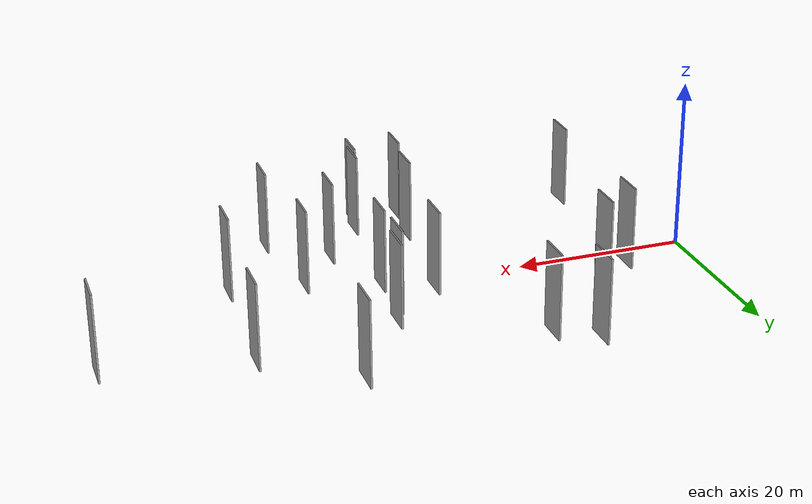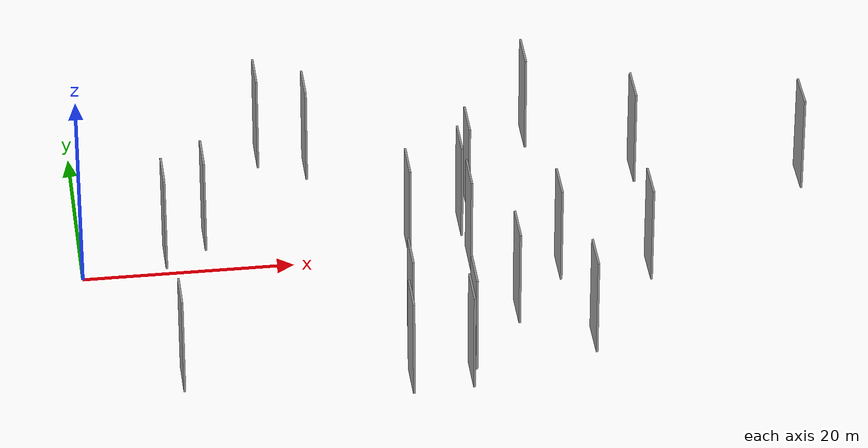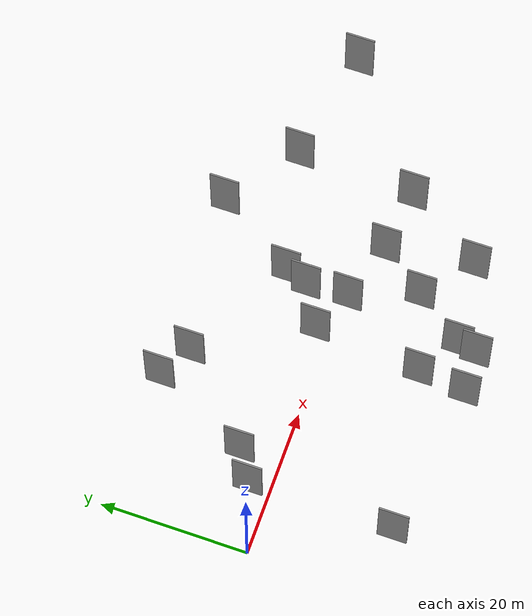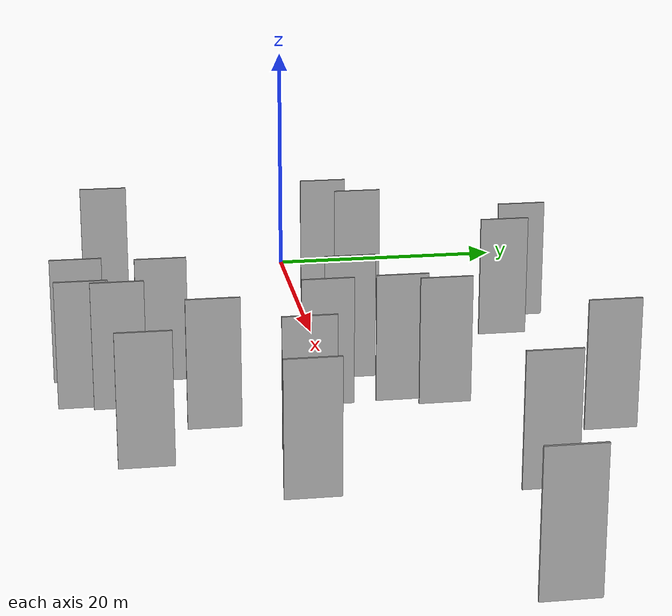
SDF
<sdf version="1.6">
 <world name="default">
  <scene>
   <sky><clouds><speed>12</speed></clouds></sky>
   <ambient>0.4 0.4 0.4 1</ambient>
   <background>0.7 0.7 0.7 1</background>
   <shadows>1</shadows>
  </scene>
  <gravity>0 0 -9.8066</gravity>
  <magnetic_field>6e-06 2.3e-05 -4.2e-05</magnetic_field>
  <physics default="0" name="default_physics" type="ode">
   <ode>
    <solver>
     <type>quick</type>
     <iters>10</iters>
     <sor>1.0</sor>
     <use_dynamic_moi_rescaling>0</use_dynamic_moi_rescaling>
    </solver>
    <constraints>
     <cfm>0</cfm>
     <erp>0.2</erp>
     <contact_max_correcting_vel>100</contact_max_correcting_vel>
     <contact_surface_layer>0.001</contact_surface_layer>
    </constraints>
   </ode>
   <max_step_size>0.004</max_step_size>
   <real_time_factor>1</real_time_factor>
   <real_time_update_rate>250</real_time_update_rate>
  </physics>
  <light name="sun" type="directional">
   <pose>0 0 10 0 0 0</pose>
   <diffuse>0.8 0.8 0.8 1</diffuse>
   <specular>0.2 0.2 0.2 1</specular>
   <attenuation>
    <range>1000</range>
    <constant>0.9</constant>
    <linear>0.01</linear>
    <quadratic>0.001</quadratic>
   </attenuation>
   <direction>-0.5 0.1 -0.9</direction>
  </light>
  <model name="grey_wall_1">
   <static>1</static>
   <pose>46.4453 -15.2437 0.0 0.000000 0.000000 1.570796</pose>
   <link name="link">
    <pose>0 0 5.00 0 0 0</pose>
    <collision name="collision"><geometry><box><size>4.00 0.2 10.00</size></box></geometry></collision>
    <visual name="visual">
     <cast_shadows>0</cast_shadows>
     <geometry><box><size>4.00 0.2 10.00</size></box></geometry>
     <material>
      <script>
       <uri>model://grey_wall/materials/scripts</uri>
       <uri>model://grey_wall/materials/textures</uri>
       <name>vrc/grey_wall</name>
      </script>
     </material>
    </visual>
   </link>
  </model>
  <model name="grey_wall_2">
   <static>1</static>
   <pose>36.3935 4.7524 0.0 0.000000 0.000000 1.570796</pose>
   <link name="link">
    <pose>0 0 5.00 0 0 0</pose>
    <collision name="collision"><geometry><box><size>4.00 0.2 10.00</size></box></geometry></collision>
    <visual name="visual">
     <cast_shadows>0</cast_shadows>
     <geometry><box><size>4.00 0.2 10.00</size></box></geometry>
     <material>
      <script>
       <uri>model://grey_wall/materials/scripts</uri>
       <uri>model://grey_wall/materials/textures</uri>
       <name>vrc/grey_wall</name>
      </script>
     </material>
    </visual>
   </link>
  </model>
  <model name="grey_wall_3">
   <static>1</static>
   <pose>18.2074 18.4902 0.0 0.000000 0.000000 1.570796</pose>
   <link name="link">
    <pose>0 0 5.00 0 0 0</pose>
    <collision name="collision"><geometry><box><size>4.00 0.2 10.00</size></box></geometry></collision>
    <visual name="visual">
     <cast_shadows>0</cast_shadows>
     <geometry><box><size>4.00 0.2 10.00</size></box></geometry>
     <material>
      <script>
       <uri>model://grey_wall/materials/scripts</uri>
       <uri>model://grey_wall/materials/textures</uri>
       <name>vrc/grey_wall</name>
      </script>
     </material>
    </visual>
   </link>
  </model>
  <model name="grey_wall_4">
   <static>1</static>
   <pose>53.2501 -4.4651 0.0 0.000000 0.000000 1.570796</pose>
   <link name="link">
    <pose>0 0 5.00 0 0 0</pose>
    <collision name="collision"><geometry><box><size>4.00 0.2 10.00</size></box></geometry></collision>
    <visual name="visual">
     <cast_shadows>0</cast_shadows>
     <geometry><box><size>4.00 0.2 10.00</size></box></geometry>
     <material>
      <script>
       <uri>model://grey_wall/materials/scripts</uri>
       <uri>model://grey_wall/materials/textures</uri>
       <name>vrc/grey_wall</name>
      </script>
     </material>
    </visual>
   </link>
  </model>
  <model name="grey_wall_5">
   <static>1</static>
   <pose>22.6965 15.9292 0.0 0.000000 0.000000 1.570796</pose>
   <link name="link">
    <pose>0 0 5.00 0 0 0</pose>
    <collision name="collision"><geometry><box><size>4.00 0.2 10.00</size></box></geometry></collision>
    <visual name="visual">
     <cast_shadows>0</cast_shadows>
     <geometry><box><size>4.00 0.2 10.00</size></box></geometry>
     <material>
      <script>
       <uri>model://grey_wall/materials/scripts</uri>
       <uri>model://grey_wall/materials/textures</uri>
       <name>vrc/grey_wall</name>
      </script>
     </material>
    </visual>
   </link>
  </model>
  <model name="grey_wall_6">
   <static>1</static>
   <pose>28.8618 -19.5170 0.0 0.000000 0.000000 1.570796</pose>
   <link name="link">
    <pose>0 0 5.00 0 0 0</pose>
    <collision name="collision"><geometry><box><size>4.00 0.2 10.00</size></box></geometry></collision>
    <visual name="visual">
     <cast_shadows>0</cast_shadows>
     <geometry><box><size>4.00 0.2 10.00</size></box></geometry>
     <material>
      <script>
       <uri>model://grey_wall/materials/scripts</uri>
       <uri>model://grey_wall/materials/textures</uri>
       <name>vrc/grey_wall</name>
      </script>
     </material>
    </visual>
   </link>
  </model>
  <model name="grey_wall_7">
   <static>1</static>
   <pose>11.9529 5.2985 0.0 0.000000 0.000000 1.570796</pose>
   <link name="link">
    <pose>0 0 5.00 0 0 0</pose>
    <collision name="collision"><geometry><box><size>4.00 0.2 10.00</size></box></geometry></collision>
    <visual name="visual">
     <cast_shadows>0</cast_shadows>
     <geometry><box><size>4.00 0.2 10.00</size></box></geometry>
     <material>
      <script>
       <uri>model://grey_wall/materials/scripts</uri>
       <uri>model://grey_wall/materials/textures</uri>
       <name>vrc/grey_wall</name>
      </script>
     </material>
    </visual>
   </link>
  </model>
  <model name="grey_wall_8">
   <static>1</static>
   <pose>39.9564 -9.8889 0.0 0.000000 0.000000 1.570796</pose>
   <link name="link">
    <pose>0 0 5.00 0 0 0</pose>
    <collision name="collision"><geometry><box><size>4.00 0.2 10.00</size></box></geometry></collision>
    <visual name="visual">
     <cast_shadows>0</cast_shadows>
     <geometry><box><size>4.00 0.2 10.00</size></box></geometry>
     <material>
      <script>
       <uri>model://grey_wall/materials/scripts</uri>
       <uri>model://grey_wall/materials/textures</uri>
       <name>vrc/grey_wall</name>
      </script>
     </material>
    </visual>
   </link>
  </model>
  <model name="grey_wall_9">
   <static>1</static>
   <pose>29.5938 -13.0239 0.0 0.000000 0.000000 1.570796</pose>
   <link name="link">
    <pose>0 0 5.00 0 0 0</pose>
    <collision name="collision"><geometry><box><size>4.00 0.2 10.00</size></box></geometry></collision>
    <visual name="visual">
     <cast_shadows>0</cast_shadows>
     <geometry><box><size>4.00 0.2 10.00</size></box></geometry>
     <material>
      <script>
       <uri>model://grey_wall/materials/scripts</uri>
       <uri>model://grey_wall/materials/textures</uri>
       <name>vrc/grey_wall</name>
      </script>
     </material>
    </visual>
   </link>
  </model>
  <model name="grey_wall_10">
   <static>1</static>
   <pose>54.0908 11.7216 0.0 0.000000 0.000000 1.570796</pose>
   <link name="link">
    <pose>0 0 5.00 0 0 0</pose>
    <collision name="collision"><geometry><box><size>4.00 0.2 10.00</size></box></geometry></collision>
    <visual name="visual">
     <cast_shadows>0</cast_shadows>
     <geometry><box><size>4.00 0.2 10.00</size></box></geometry>
     <material>
      <script>
       <uri>model://grey_wall/materials/scripts</uri>
       <uri>model://grey_wall/materials/textures</uri>
       <name>vrc/grey_wall</name>
      </script>
     </material>
    </visual>
   </link>
  </model>
  <model name="grey_wall_11">
   <static>1</static>
   <pose>35.0504 -16.5751 0.0 0.000000 0.000000 1.570796</pose>
   <link name="link">
    <pose>0 0 5.00 0 0 0</pose>
    <collision name="collision"><geometry><box><size>4.00 0.2 10.00</size></box></geometry></collision>
    <visual name="visual">
     <cast_shadows>0</cast_shadows>
     <geometry><box><size>4.00 0.2 10.00</size></box></geometry>
     <material>
      <script>
       <uri>model://grey_wall/materials/scripts</uri>
       <uri>model://grey_wall/materials/textures</uri>
       <name>vrc/grey_wall</name>
      </script>
     </material>
    </visual>
   </link>
  </model>
  <model name="grey_wall_12">
   <static>1</static>
   <pose>44.4175 18.8618 0.0 0.000000 0.000000 1.570796</pose>
   <link name="link">
    <pose>0 0 5.00 0 0 0</pose>
    <collision name="collision"><geometry><box><size>4.00 0.2 10.00</size></box></geometry></collision>
    <visual name="visual">
     <cast_shadows>0</cast_shadows>
     <geometry><box><size>4.00 0.2 10.00</size></box></geometry>
     <material>
      <script>
       <uri>model://grey_wall/materials/scripts</uri>
       <uri>model://grey_wall/materials/textures</uri>
       <name>vrc/grey_wall</name>
      </script>
     </material>
    </visual>
   </link>
  </model>
  <model name="grey_wall_13">
   <static>1</static>
   <pose>36.5735 -0.9675 0.0 0.000000 0.000000 1.570796</pose>
   <link name="link">
    <pose>0 0 5.00 0 0 0</pose>
    <collision name="collision"><geometry><box><size>4.00 0.2 10.00</size></box></geometry></collision>
    <visual name="visual">
     <cast_shadows>0</cast_shadows>
     <geometry><box><size>4.00 0.2 10.00</size></box></geometry>
     <material>
      <script>
       <uri>model://grey_wall/materials/scripts</uri>
       <uri>model://grey_wall/materials/textures</uri>
       <name>vrc/grey_wall</name>
      </script>
     </material>
    </visual>
   </link>
  </model>
  <model name="grey_wall_14">
   <static>1</static>
   <pose>69.9493 8.6833 0.0 0.000000 0.000000 1.570796</pose>
   <link name="link">
    <pose>0 0 5.00 0 0 0</pose>
    <collision name="collision"><geometry><box><size>4.00 0.2 10.00</size></box></geometry></collision>
    <visual name="visual">
     <cast_shadows>0</cast_shadows>
     <geometry><box><size>4.00 0.2 10.00</size></box></geometry>
     <material>
      <script>
       <uri>model://grey_wall/materials/scripts</uri>
       <uri>model://grey_wall/materials/textures</uri>
       <name>vrc/grey_wall</name>
      </script>
     </material>
    </visual>
   </link>
  </model>
  <model name="grey_wall_15">
   <static>1</static>
   <pose>34.4756 -19.2396 0.0 0.000000 0.000000 1.570796</pose>
   <link name="link">
    <pose>0 0 5.00 0 0 0</pose>
    <collision name="collision"><geometry><box><size>4.00 0.2 10.00</size></box></geometry></collision>
    <visual name="visual">
     <cast_shadows>0</cast_shadows>
     <geometry><box><size>4.00 0.2 10.00</size></box></geometry>
     <material>
      <script>
       <uri>model://grey_wall/materials/scripts</uri>
       <uri>model://grey_wall/materials/textures</uri>
       <name>vrc/grey_wall</name>
      </script>
     </material>
    </visual>
   </link>
  </model>
  <model name="grey_wall_16">
   <static>1</static>
   <pose>37.5236 7.8915 0.0 0.000000 0.000000 1.570796</pose>
   <link name="link">
    <pose>0 0 5.00 0 0 0</pose>
    <collision name="collision"><geometry><box><size>4.00 0.2 10.00</size></box></geometry></collision>
    <visual name="visual">
     <cast_shadows>0</cast_shadows>
     <geometry><box><size>4.00 0.2 10.00</size></box></geometry>
     <material>
      <script>
       <uri>model://grey_wall/materials/scripts</uri>
       <uri>model://grey_wall/materials/textures</uri>
       <name>vrc/grey_wall</name>
      </script>
     </material>
    </visual>
   </link>
  </model>
  <model name="grey_wall_17">
   <static>1</static>
   <pose>8.0072 -16.7221 0.0 0.000000 0.000000 1.570796</pose>
   <link name="link">
    <pose>0 0 5.00 0 0 0</pose>
    <collision name="collision"><geometry><box><size>4.00 0.2 10.00</size></box></geometry></collision>
    <visual name="visual">
     <cast_shadows>0</cast_shadows>
     <geometry><box><size>4.00 0.2 10.00</size></box></geometry>
     <material>
      <script>
       <uri>model://grey_wall/materials/scripts</uri>
       <uri>model://grey_wall/materials/textures</uri>
       <name>vrc/grey_wall</name>
      </script>
     </material>
    </visual>
   </link>
  </model>
  <model name="grey_wall_18">
   <static>1</static>
   <pose>44.7786 -3.4775 0.0 0.000000 0.000000 1.570796</pose>
   <link name="link">
    <pose>0 0 5.00 0 0 0</pose>
    <collision name="collision"><geometry><box><size>4.00 0.2 10.00</size></box></geometry></collision>
    <visual name="visual">
     <cast_shadows>0</cast_shadows>
     <geometry><box><size>4.00 0.2 10.00</size></box></geometry>
     <material>
      <script>
       <uri>model://grey_wall/materials/scripts</uri>
       <uri>model://grey_wall/materials/textures</uri>
       <name>vrc/grey_wall</name>
      </script>
     </material>
    </visual>
   </link>
  </model>
  <model name="grey_wall_19">
   <static>1</static>
   <pose>31.0532 1.6059 0.0 0.000000 0.000000 1.570796</pose>
   <link name="link">
    <pose>0 0 5.00 0 0 0</pose>
    <collision name="collision"><geometry><box><size>4.00 0.2 10.00</size></box></geometry></collision>
    <visual name="visual">
     <cast_shadows>0</cast_shadows>
     <geometry><box><size>4.00 0.2 10.00</size></box></geometry>
     <material>
      <script>
       <uri>model://grey_wall/materials/scripts</uri>
       <uri>model://grey_wall/materials/textures</uri>
       <name>vrc/grey_wall</name>
      </script>
     </material>
    </visual>
   </link>
  </model>
  <model name="grey_wall_20">
   <static>1</static>
   <pose>8.0128 2.8161 0.0 0.000000 0.000000 1.570796</pose>
   <link name="link">
    <pose>0 0 5.00 0 0 0</pose>
    <collision name="collision"><geometry><box><size>4.00 0.2 10.00</size></box></geometry></collision>
    <visual name="visual">
     <cast_shadows>0</cast_shadows>
     <geometry><box><size>4.00 0.2 10.00</size></box></geometry>
     <material>
      <script>
       <uri>model://grey_wall/materials/scripts</uri>
       <uri>model://grey_wall/materials/textures</uri>
       <name>vrc/grey_wall</name>
      </script>
     </material>
    </visual>
   </link>
  </model>
 </world>
</sdf>
